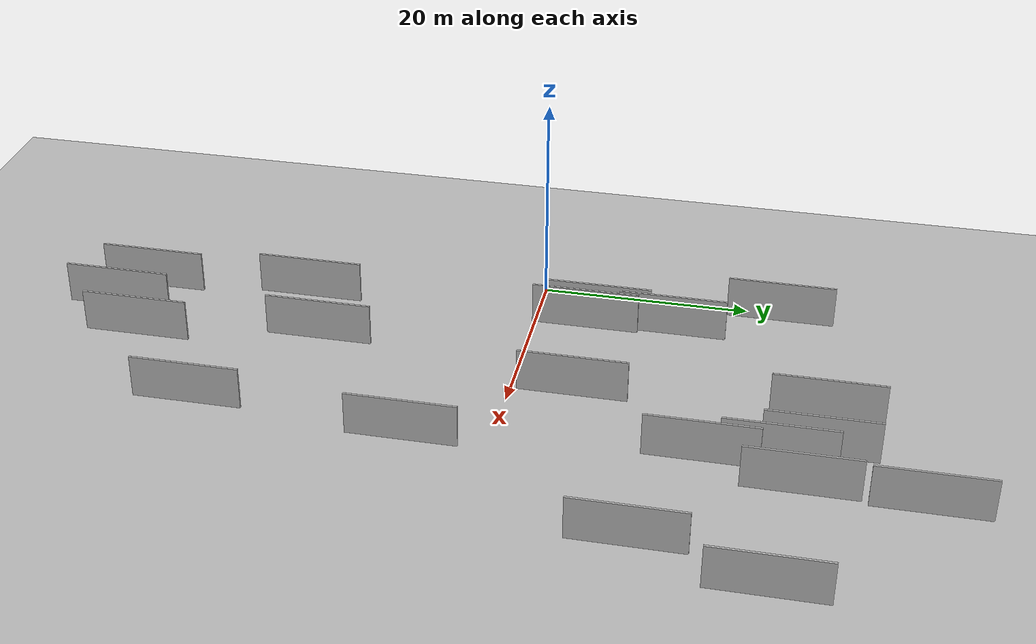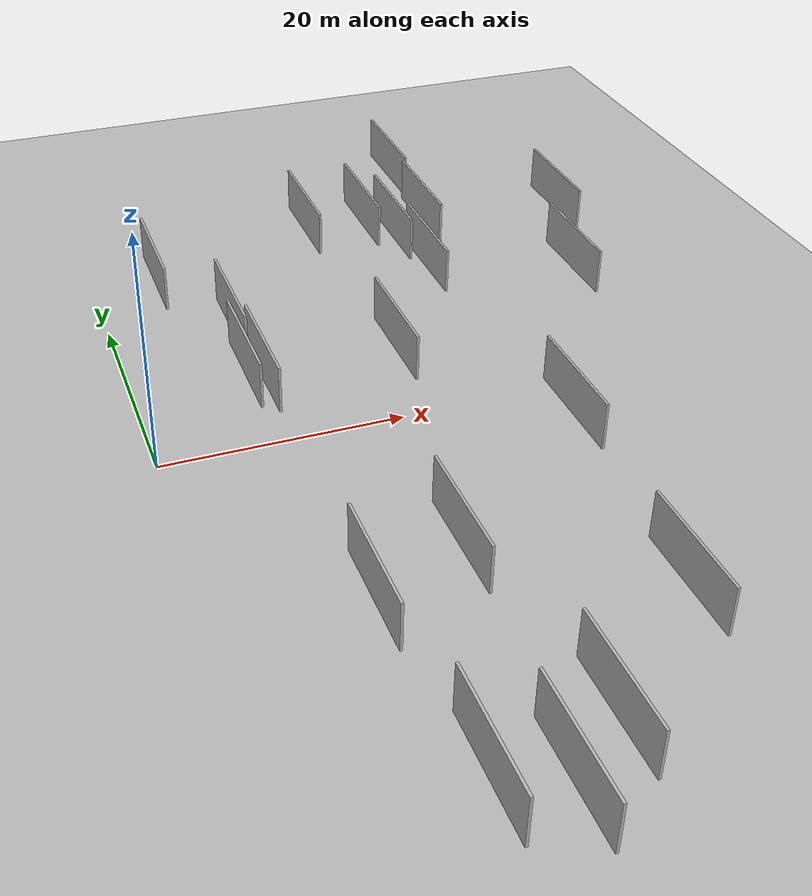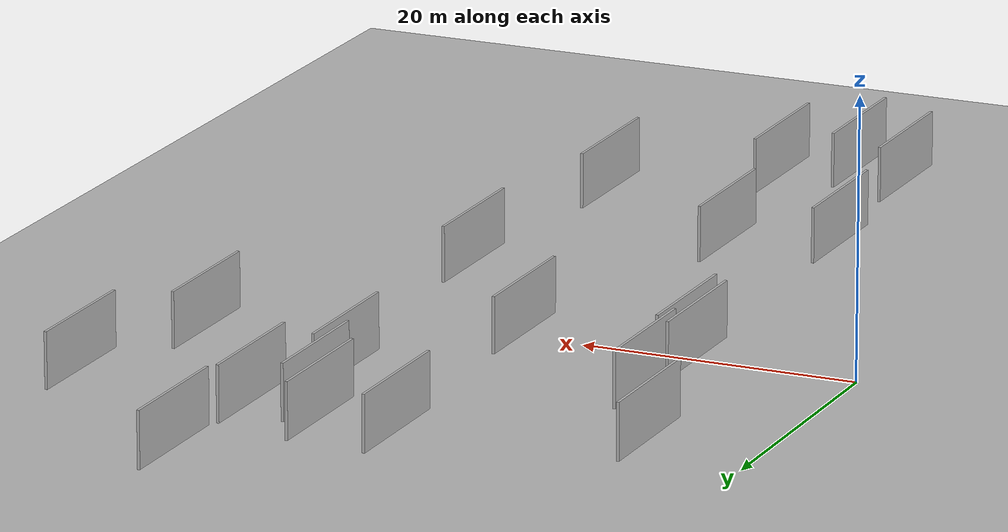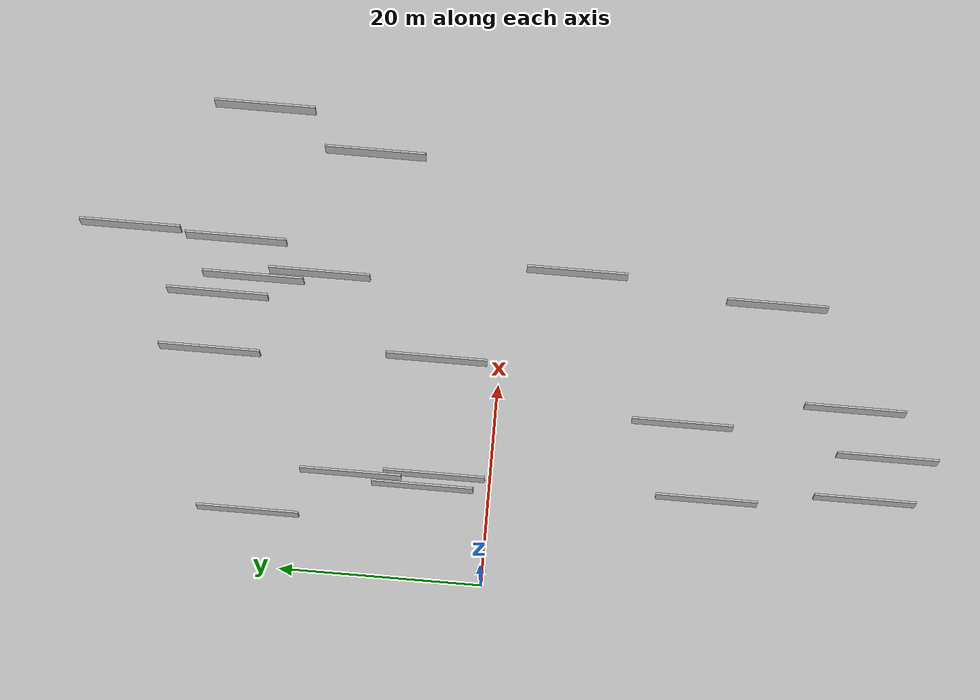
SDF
<?xml version="1.0" encoding="utf-8"?>

<sdf version="1.6">

   <world name="default">

      <gui fullscreen="0">

         <camera name="user_camera">

            <pose>-15 0 4.57585 0 0 0</pose>

            <view_controller>orbit</view_controller>

         </camera>

      </gui>

      <scene>

         <sky>

           <clouds>

             <speed>12</speed>

           </clouds>

         </sky>

         <ambient>0.4 0.4 0.4 1</ambient>

         <background>0.7 0.7 0.7 1</background>

         <shadows>1</shadows>

      </scene>

      <gravity>0 0 -9.8066</gravity>

      <magnetic_field>6e-06 2.3e-05 -4.2e-05</magnetic_field>

      <physics default="0" name="default_physics" type="ode">

         <ode>

            <solver>

               <type>quick</type>

               <iters>10</iters>

               <sor>1.0</sor>

               <use_dynamic_moi_rescaling>0</use_dynamic_moi_rescaling>

            </solver>

            <constraints>

               <cfm>0</cfm>

               <erp>0.2</erp>

               <contact_max_correcting_vel>100</contact_max_correcting_vel>

               <contact_surface_layer>0.001</contact_surface_layer>

            </constraints>

         </ode>

         <max_step_size>0.004</max_step_size>

         <real_time_factor>1</real_time_factor>

         <real_time_update_rate>250</real_time_update_rate>

      </physics>

      <light name="sun" type="directional">

         <cast_shadows>1</cast_shadows>

         <pose>0 0 10 0 0 0</pose>

         <diffuse>0.8 0.8 0.8 1</diffuse>

         <specular>0.2 0.2 0.2 1</specular>

         <attenuation>

            <range>1000</range>

            <constant>0.9</constant>

            <linear>0.01</linear>

            <quadratic>0.001</quadratic>

         </attenuation>

         <direction>-0.5 0.1 -0.9</direction>

      </light>

      <include>

         <name>ground_plane_1</name>

         <uri>model://HANNAS_ground_plane</uri>

         <pose>0 0 0  0 0 0</pose>

      </include>

      <include>

         <name>ground_plane_2</name>

         <uri>model://HANNAS_ground_plane</uri>

         <pose>100 0 0  0 0 0</pose>

      </include>

      <model name="HANNAS_wall_1">

         <static>1</static>

         <pose frame="">9.8910 -21.3462 2.5 0.000000 0.000000 1.570796</pose>

         <link name="link">

            <pose frame="">0 0 2.00 0 0 0</pose>

            <collision name="collision">

               <geometry>

                  <box>

                     <size>10.00 0.2 4.00</size>

                  </box>

               </geometry>

               <max_contacts>10</max_contacts>

               <surface>

                  <contact>

                     <ode/>

                  </contact>

                  <bounce/>

                  <friction>

                     <torsional>

                        <ode/>

                     </torsional>

                     <ode/>

                  </friction>

               </surface>

            </collision>

            <visual name="visual">

               <cast_shadows>0</cast_shadows>

               <geometry>

                  <box>

                     <size>10.00 0.2 4.00</size>

                  </box>

               </geometry>

               <material>

                  <script>

                     <uri>model://HANNAS_wall/materials/scripts</uri>

                     <uri>model://HANNAS_wall/materials/textures</uri>

                     <name>vrc/HANNAS_wall</name>

                  </script>

               </material>

            </visual>

            <self_collide>0</self_collide>

            <enable_wind>0</enable_wind>

            <kinematic>0</kinematic>

         </link>

      </model>

      <model name="HANNAS_wall_2">

         <static>1</static>

         <pose frame="">10.0449 5.4870 2.5 0.000000 0.000000 1.570796</pose>

         <link name="link">

            <pose frame="">0 0 2.00 0 0 0</pose>

            <collision name="collision">

               <geometry>

                  <box>

                     <size>10.00 0.2 4.00</size>

                  </box>

               </geometry>

               <max_contacts>10</max_contacts>

               <surface>

                  <contact>

                     <ode/>

                  </contact>

                  <bounce/>

                  <friction>

                     <torsional>

                        <ode/>

                     </torsional>

                     <ode/>

                  </friction>

               </surface>

            </collision>

            <visual name="visual">

               <cast_shadows>0</cast_shadows>

               <geometry>

                  <box>

                     <size>10.00 0.2 4.00</size>

                  </box>

               </geometry>

               <material>

                  <script>

                     <uri>model://HANNAS_wall/materials/scripts</uri>

                     <uri>model://HANNAS_wall/materials/textures</uri>

                     <name>vrc/HANNAS_wall</name>

                  </script>

               </material>

            </visual>

            <self_collide>0</self_collide>

            <enable_wind>0</enable_wind>

            <kinematic>0</kinematic>

         </link>

      </model>

      <model name="HANNAS_wall_3">

         <static>1</static>

         <pose frame="">9.5727 13.6501 2.5 0.000000 0.000000 1.570796</pose>

         <link name="link">

            <pose frame="">0 0 2.00 0 0 0</pose>

            <collision name="collision">

               <geometry>

                  <box>

                     <size>10.00 0.2 4.00</size>

                  </box>

               </geometry>

               <max_contacts>10</max_contacts>

               <surface>

                  <contact>

                     <ode/>

                  </contact>

                  <bounce/>

                  <friction>

                     <torsional>

                        <ode/>

                     </torsional>

                     <ode/>

                  </friction>

               </surface>

            </collision>

            <visual name="visual">

               <cast_shadows>0</cast_shadows>

               <geometry>

                  <box>

                     <size>10.00 0.2 4.00</size>

                  </box>

               </geometry>

               <material>

                  <script>

                     <uri>model://HANNAS_wall/materials/scripts</uri>

                     <uri>model://HANNAS_wall/materials/textures</uri>

                     <name>vrc/HANNAS_wall</name>

                  </script>

               </material>

            </visual>

            <self_collide>0</self_collide>

            <enable_wind>0</enable_wind>

            <kinematic>0</kinematic>

         </link>

      </model>

      <model name="HANNAS_wall_4">

         <static>1</static>

         <pose frame="">41.5551 13.9879 2.5 0.000000 0.000000 1.570796</pose>

         <link name="link">

            <pose frame="">0 0 2.00 0 0 0</pose>

            <collision name="collision">

               <geometry>

                  <box>

                     <size>10.00 0.2 4.00</size>

                  </box>

               </geometry>

               <max_contacts>10</max_contacts>

               <surface>

                  <contact>

                     <ode/>

                  </contact>

                  <bounce/>

                  <friction>

                     <torsional>

                        <ode/>

                     </torsional>

                     <ode/>

                  </friction>

               </surface>

            </collision>

            <visual name="visual">

               <cast_shadows>0</cast_shadows>

               <geometry>

                  <box>

                     <size>10.00 0.2 4.00</size>

                  </box>

               </geometry>

               <material>

                  <script>

                     <uri>model://HANNAS_wall/materials/scripts</uri>

                     <uri>model://HANNAS_wall/materials/textures</uri>

                     <name>vrc/HANNAS_wall</name>

                  </script>

               </material>

            </visual>

            <self_collide>0</self_collide>

            <enable_wind>0</enable_wind>

            <kinematic>0</kinematic>

         </link>

      </model>

      <model name="HANNAS_wall_5">

         <static>1</static>

         <pose frame="">31.2918 -6.8755 2.5 0.000000 0.000000 1.570796</pose>

         <link name="link">

            <pose frame="">0 0 2.00 0 0 0</pose>

            <collision name="collision">

               <geometry>

                  <box>

                     <size>10.00 0.2 4.00</size>

                  </box>

               </geometry>

               <max_contacts>10</max_contacts>

               <surface>

                  <contact>

                     <ode/>

                  </contact>

                  <bounce/>

                  <friction>

                     <torsional>

                        <ode/>

                     </torsional>

                     <ode/>

                  </friction>

               </surface>

            </collision>

            <visual name="visual">

               <cast_shadows>0</cast_shadows>

               <geometry>

                  <box>

                     <size>10.00 0.2 4.00</size>

                  </box>

               </geometry>

               <material>

                  <script>

                     <uri>model://HANNAS_wall/materials/scripts</uri>

                     <uri>model://HANNAS_wall/materials/textures</uri>

                     <name>vrc/HANNAS_wall</name>

                  </script>

               </material>

            </visual>

            <self_collide>0</self_collide>

            <enable_wind>0</enable_wind>

            <kinematic>0</kinematic>

         </link>

      </model>

      <model name="HANNAS_wall_6">

         <static>1</static>

         <pose frame="">28.1778 24.9407 2.5 0.000000 0.000000 1.570796</pose>

         <link name="link">

            <pose frame="">0 0 2.00 0 0 0</pose>

            <collision name="collision">

               <geometry>

                  <box>

                     <size>10.00 0.2 4.00</size>

                  </box>

               </geometry>

               <max_contacts>10</max_contacts>

               <surface>

                  <contact>

                     <ode/>

                  </contact>

                  <bounce/>

                  <friction>

                     <torsional>

                        <ode/>

                     </torsional>

                     <ode/>

                  </friction>

               </surface>

            </collision>

            <visual name="visual">

               <cast_shadows>0</cast_shadows>

               <geometry>

                  <box>

                     <size>10.00 0.2 4.00</size>

                  </box>

               </geometry>

               <material>

                  <script>

                     <uri>model://HANNAS_wall/materials/scripts</uri>

                     <uri>model://HANNAS_wall/materials/textures</uri>

                     <name>vrc/HANNAS_wall</name>

                  </script>

               </material>

            </visual>

            <self_collide>0</self_collide>

            <enable_wind>0</enable_wind>

            <kinematic>0</kinematic>

         </link>

      </model>

      <model name="HANNAS_wall_7">

         <static>1</static>

         <pose frame="">32.3200 37.4762 2.5 0.000000 0.000000 1.570796</pose>

         <link name="link">

            <pose frame="">0 0 2.00 0 0 0</pose>

            <collision name="collision">

               <geometry>

                  <box>

                     <size>10.00 0.2 4.00</size>

                  </box>

               </geometry>

               <max_contacts>10</max_contacts>

               <surface>

                  <contact>

                     <ode/>

                  </contact>

                  <bounce/>

                  <friction>

                     <torsional>

                        <ode/>

                     </torsional>

                     <ode/>

                  </friction>

               </surface>

            </collision>

            <visual name="visual">

               <cast_shadows>0</cast_shadows>

               <geometry>

                  <box>

                     <size>10.00 0.2 4.00</size>

                  </box>

               </geometry>

               <material>

                  <script>

                     <uri>model://HANNAS_wall/materials/scripts</uri>

                     <uri>model://HANNAS_wall/materials/textures</uri>

                     <name>vrc/HANNAS_wall</name>

                  </script>

               </material>

            </visual>

            <self_collide>0</self_collide>

            <enable_wind>0</enable_wind>

            <kinematic>0</kinematic>

         </link>

      </model>

      <model name="HANNAS_wall_8">

         <static>1</static>

         <pose frame="">15.4733 -38.7401 2.5 0.000000 0.000000 1.570796</pose>

         <link name="link">

            <pose frame="">0 0 2.00 0 0 0</pose>

            <collision name="collision">

               <geometry>

                  <box>

                     <size>10.00 0.2 4.00</size>

                  </box>

               </geometry>

               <max_contacts>10</max_contacts>

               <surface>

                  <contact>

                     <ode/>

                  </contact>

                  <bounce/>

                  <friction>

                     <torsional>

                        <ode/>

                     </torsional>

                     <ode/>

                  </friction>

               </surface>

            </collision>

            <visual name="visual">

               <cast_shadows>0</cast_shadows>

               <geometry>

                  <box>

                     <size>10.00 0.2 4.00</size>

                  </box>

               </geometry>

               <material>

                  <script>

                     <uri>model://HANNAS_wall/materials/scripts</uri>

                     <uri>model://HANNAS_wall/materials/textures</uri>

                     <name>vrc/HANNAS_wall</name>

                  </script>

               </material>

            </visual>

            <self_collide>0</self_collide>

            <enable_wind>0</enable_wind>

            <kinematic>0</kinematic>

         </link>

      </model>

      <model name="HANNAS_wall_9">

         <static>1</static>

         <pose frame="">20.6354 28.5776 2.5 0.000000 0.000000 1.570796</pose>

         <link name="link">

            <pose frame="">0 0 2.00 0 0 0</pose>

            <collision name="collision">

               <geometry>

                  <box>

                     <size>10.00 0.2 4.00</size>

                  </box>

               </geometry>

               <max_contacts>10</max_contacts>

               <surface>

                  <contact>

                     <ode/>

                  </contact>

                  <bounce/>

                  <friction>

                     <torsional>

                        <ode/>

                     </torsional>

                     <ode/>

                  </friction>

               </surface>

            </collision>

            <visual name="visual">

               <cast_shadows>0</cast_shadows>

               <geometry>

                  <box>

                     <size>10.00 0.2 4.00</size>

                  </box>

               </geometry>

               <material>

                  <script>

                     <uri>model://HANNAS_wall/materials/scripts</uri>

                     <uri>model://HANNAS_wall/materials/textures</uri>

                     <name>vrc/HANNAS_wall</name>

                  </script>

               </material>

            </visual>

            <self_collide>0</self_collide>

            <enable_wind>0</enable_wind>

            <kinematic>0</kinematic>

         </link>

      </model>

      <model name="HANNAS_wall_10">

         <static>1</static>

         <pose frame="">45.2615 25.2938 2.5 0.000000 0.000000 1.570796</pose>

         <link name="link">

            <pose frame="">0 0 2.00 0 0 0</pose>

            <collision name="collision">

               <geometry>

                  <box>

                     <size>10.00 0.2 4.00</size>

                  </box>

               </geometry>

               <max_contacts>10</max_contacts>

               <surface>

                  <contact>

                     <ode/>

                  </contact>

                  <bounce/>

                  <friction>

                     <torsional>

                        <ode/>

                     </torsional>

                     <ode/>

                  </friction>

               </surface>

            </collision>

            <visual name="visual">

               <cast_shadows>0</cast_shadows>

               <geometry>

                  <box>

                     <size>10.00 0.2 4.00</size>

                  </box>

               </geometry>

               <material>

                  <script>

                     <uri>model://HANNAS_wall/materials/scripts</uri>

                     <uri>model://HANNAS_wall/materials/textures</uri>

                     <name>vrc/HANNAS_wall</name>

                  </script>

               </material>

            </visual>

            <self_collide>0</self_collide>

            <enable_wind>0</enable_wind>

            <kinematic>0</kinematic>

         </link>

      </model>

      <model name="HANNAS_wall_11">

         <static>1</static>

         <pose frame="">11.1461 -36.8215 2.5 0.000000 0.000000 1.570796</pose>

         <link name="link">

            <pose frame="">0 0 2.00 0 0 0</pose>

            <collision name="collision">

               <geometry>

                  <box>

                     <size>10.00 0.2 4.00</size>

                  </box>

               </geometry>

               <max_contacts>10</max_contacts>

               <surface>

                  <contact>

                     <ode/>

                  </contact>

                  <bounce/>

                  <friction>

                     <torsional>

                        <ode/>

                     </torsional>

                     <ode/>

                  </friction>

               </surface>

            </collision>

            <visual name="visual">

               <cast_shadows>0</cast_shadows>

               <geometry>

                  <box>

                     <size>10.00 0.2 4.00</size>

                  </box>

               </geometry>

               <material>

                  <script>

                     <uri>model://HANNAS_wall/materials/scripts</uri>

                     <uri>model://HANNAS_wall/materials/textures</uri>

                     <name>vrc/HANNAS_wall</name>

                  </script>

               </material>

            </visual>

            <self_collide>0</self_collide>

            <enable_wind>0</enable_wind>

            <kinematic>0</kinematic>

         </link>

      </model>

      <model name="HANNAS_wall_12">

         <static>1</static>

         <pose frame="">29.0543 18.4433 2.5 0.000000 0.000000 1.570796</pose>

         <link name="link">

            <pose frame="">0 0 2.00 0 0 0</pose>

            <collision name="collision">

               <geometry>

                  <box>

                     <size>10.00 0.2 4.00</size>

                  </box>

               </geometry>

               <max_contacts>10</max_contacts>

               <surface>

                  <contact>

                     <ode/>

                  </contact>

                  <bounce/>

                  <friction>

                     <torsional>

                        <ode/>

                     </torsional>

                     <ode/>

                  </friction>

               </surface>

            </collision>

            <visual name="visual">

               <cast_shadows>0</cast_shadows>

               <geometry>

                  <box>

                     <size>10.00 0.2 4.00</size>

                  </box>

               </geometry>

               <material>

                  <script>

                     <uri>model://HANNAS_wall/materials/scripts</uri>

                     <uri>model://HANNAS_wall/materials/textures</uri>

                     <name>vrc/HANNAS_wall</name>

                  </script>

               </material>

            </visual>

            <self_collide>0</self_collide>

            <enable_wind>0</enable_wind>

            <kinematic>0</kinematic>

         </link>

      </model>

      <model name="HANNAS_wall_13">

         <static>1</static>

         <pose frame="">5.0737 23.3779 2.5 0.000000 0.000000 1.570796</pose>

         <link name="link">

            <pose frame="">0 0 2.00 0 0 0</pose>

            <collision name="collision">

               <geometry>

                  <box>

                     <size>10.00 0.2 4.00</size>

                  </box>

               </geometry>

               <max_contacts>10</max_contacts>

               <surface>

                  <contact>

                     <ode/>

                  </contact>

                  <bounce/>

                  <friction>

                     <torsional>

                        <ode/>

                     </torsional>

                     <ode/>

                  </friction>

               </surface>

            </collision>

            <visual name="visual">

               <cast_shadows>0</cast_shadows>

               <geometry>

                  <box>

                     <size>10.00 0.2 4.00</size>

                  </box>

               </geometry>

               <material>

                  <script>

                     <uri>model://HANNAS_wall/materials/scripts</uri>

                     <uri>model://HANNAS_wall/materials/textures</uri>

                     <name>vrc/HANNAS_wall</name>

                  </script>

               </material>

            </visual>

            <self_collide>0</self_collide>

            <enable_wind>0</enable_wind>

            <kinematic>0</kinematic>

         </link>

      </model>

      <model name="HANNAS_wall_14">

         <static>1</static>

         <pose frame="">19.9971 -35.2172 2.5 0.000000 0.000000 1.570796</pose>

         <link name="link">

            <pose frame="">0 0 2.00 0 0 0</pose>

            <collision name="collision">

               <geometry>

                  <box>

                     <size>10.00 0.2 4.00</size>

                  </box>

               </geometry>

               <max_contacts>10</max_contacts>

               <surface>

                  <contact>

                     <ode/>

                  </contact>

                  <bounce/>

                  <friction>

                     <torsional>

                        <ode/>

                     </torsional>

                     <ode/>

                  </friction>

               </surface>

            </collision>

            <visual name="visual">

               <cast_shadows>0</cast_shadows>

               <geometry>

                  <box>

                     <size>10.00 0.2 4.00</size>

                  </box>

               </geometry>

               <material>

                  <script>

                     <uri>model://HANNAS_wall/materials/scripts</uri>

                     <uri>model://HANNAS_wall/materials/textures</uri>

                     <name>vrc/HANNAS_wall</name>

                  </script>

               </material>

            </visual>

            <self_collide>0</self_collide>

            <enable_wind>0</enable_wind>

            <kinematic>0</kinematic>

         </link>

      </model>

      <model name="HANNAS_wall_15">

         <static>1</static>

         <pose frame="">29.6917 -26.7847 2.5 0.000000 0.000000 1.570796</pose>

         <link name="link">

            <pose frame="">0 0 2.00 0 0 0</pose>

            <collision name="collision">

               <geometry>

                  <box>

                     <size>10.00 0.2 4.00</size>

                  </box>

               </geometry>

               <max_contacts>10</max_contacts>

               <surface>

                  <contact>

                     <ode/>

                  </contact>

                  <bounce/>

                  <friction>

                     <torsional>

                        <ode/>

                     </torsional>

                     <ode/>

                  </friction>

               </surface>

            </collision>

            <visual name="visual">

               <cast_shadows>0</cast_shadows>

               <geometry>

                  <box>

                     <size>10.00 0.2 4.00</size>

                  </box>

               </geometry>

               <material>

                  <script>

                     <uri>model://HANNAS_wall/materials/scripts</uri>

                     <uri>model://HANNAS_wall/materials/textures</uri>

                     <name>vrc/HANNAS_wall</name>

                  </script>

               </material>

            </visual>

            <self_collide>0</self_collide>

            <enable_wind>0</enable_wind>

            <kinematic>0</kinematic>

         </link>

      </model>

      <model name="HANNAS_wall_16">

         <static>1</static>

         <pose frame="">17.1610 -18.4045 2.5 0.000000 0.000000 1.570796</pose>

         <link name="link">

            <pose frame="">0 0 2.00 0 0 0</pose>

            <collision name="collision">

               <geometry>

                  <box>

                     <size>10.00 0.2 4.00</size>

                  </box>

               </geometry>

               <max_contacts>10</max_contacts>

               <surface>

                  <contact>

                     <ode/>

                  </contact>

                  <bounce/>

                  <friction>

                     <torsional>

                        <ode/>

                     </torsional>

                     <ode/>

                  </friction>

               </surface>

            </collision>

            <visual name="visual">

               <cast_shadows>0</cast_shadows>

               <geometry>

                  <box>

                     <size>10.00 0.2 4.00</size>

                  </box>

               </geometry>

               <material>

                  <script>

                     <uri>model://HANNAS_wall/materials/scripts</uri>

                     <uri>model://HANNAS_wall/materials/textures</uri>

                     <name>vrc/HANNAS_wall</name>

                  </script>

               </material>

            </visual>

            <self_collide>0</self_collide>

            <enable_wind>0</enable_wind>

            <kinematic>0</kinematic>

         </link>

      </model>

      <model name="HANNAS_wall_17">

         <static>1</static>

         <pose frame="">26.2667 28.2981 2.5 0.000000 0.000000 1.570796</pose>

         <link name="link">

            <pose frame="">0 0 2.00 0 0 0</pose>

            <collision name="collision">

               <geometry>

                  <box>

                     <size>10.00 0.2 4.00</size>

                  </box>

               </geometry>

               <max_contacts>10</max_contacts>

               <surface>

                  <contact>

                     <ode/>

                  </contact>

                  <bounce/>

                  <friction>

                     <torsional>

                        <ode/>

                     </torsional>

                     <ode/>

                  </friction>

               </surface>

            </collision>

            <visual name="visual">

               <cast_shadows>0</cast_shadows>

               <geometry>

                  <box>

                     <size>10.00 0.2 4.00</size>

                  </box>

               </geometry>

               <material>

                  <script>

                     <uri>model://HANNAS_wall/materials/scripts</uri>

                     <uri>model://HANNAS_wall/materials/textures</uri>

                     <name>vrc/HANNAS_wall</name>

                  </script>

               </material>

            </visual>

            <self_collide>0</self_collide>

            <enable_wind>0</enable_wind>

            <kinematic>0</kinematic>

         </link>

      </model>

      <model name="HANNAS_wall_18">

         <static>1</static>

         <pose frame="">21.5850 6.2415 2.5 0.000000 0.000000 1.570796</pose>

         <link name="link">

            <pose frame="">0 0 2.00 0 0 0</pose>

            <collision name="collision">

               <geometry>

                  <box>

                     <size>10.00 0.2 4.00</size>

                  </box>

               </geometry>

               <max_contacts>10</max_contacts>

               <surface>

                  <contact>

                     <ode/>

                  </contact>

                  <bounce/>

                  <friction>

                     <torsional>

                        <ode/>

                     </torsional>

                     <ode/>

                  </friction>

               </surface>

            </collision>

            <visual name="visual">

               <cast_shadows>0</cast_shadows>

               <geometry>

                  <box>

                     <size>10.00 0.2 4.00</size>

                  </box>

               </geometry>

               <material>

                  <script>

                     <uri>model://HANNAS_wall/materials/scripts</uri>

                     <uri>model://HANNAS_wall/materials/textures</uri>

                     <name>vrc/HANNAS_wall</name>

                  </script>

               </material>

            </visual>

            <self_collide>0</self_collide>

            <enable_wind>0</enable_wind>

            <kinematic>0</kinematic>

         </link>

      </model>

      <model name="HANNAS_wall_19">

         <static>1</static>

         <pose frame="">8.8685 6.5234 2.5 0.000000 0.000000 1.570796</pose>

         <link name="link">

            <pose frame="">0 0 2.00 0 0 0</pose>

            <collision name="collision">

               <geometry>

                  <box>

                     <size>10.00 0.2 4.00</size>

                  </box>

               </geometry>

               <max_contacts>10</max_contacts>

               <surface>

                  <contact>

                     <ode/>

                  </contact>

                  <bounce/>

                  <friction>

                     <torsional>

                        <ode/>

                     </torsional>

                     <ode/>

                  </friction>

               </surface>

            </collision>

            <visual name="visual">

               <cast_shadows>0</cast_shadows>

               <geometry>

                  <box>

                     <size>10.00 0.2 4.00</size>

                  </box>

               </geometry>

               <material>

                  <script>

                     <uri>model://HANNAS_wall/materials/scripts</uri>

                     <uri>model://HANNAS_wall/materials/textures</uri>

                     <name>vrc/HANNAS_wall</name>

                  </script>

               </material>

            </visual>

            <self_collide>0</self_collide>

            <enable_wind>0</enable_wind>

            <kinematic>0</kinematic>

         </link>

      </model>

      <model name="HANNAS_wall_20">

         <static>1</static>

         <pose frame="">31.8618 26.9551 2.5 0.000000 0.000000 1.570796</pose>

         <link name="link">

            <pose frame="">0 0 2.00 0 0 0</pose>

            <collision name="collision">

               <geometry>

                  <box>

                     <size>10.00 0.2 4.00</size>

                  </box>

               </geometry>

               <max_contacts>10</max_contacts>

               <surface>

                  <contact>

                     <ode/>

                  </contact>

                  <bounce/>

                  <friction>

                     <torsional>

                        <ode/>

                     </torsional>

                     <ode/>

                  </friction>

               </surface>

            </collision>

            <visual name="visual">

               <cast_shadows>0</cast_shadows>

               <geometry>

                  <box>

                     <size>10.00 0.2 4.00</size>

                  </box>

               </geometry>

               <material>

                  <script>

                     <uri>model://HANNAS_wall/materials/scripts</uri>

                     <uri>model://HANNAS_wall/materials/textures</uri>

                     <name>vrc/HANNAS_wall</name>

                  </script>

               </material>

            </visual>

            <self_collide>0</self_collide>

            <enable_wind>0</enable_wind>

            <kinematic>0</kinematic>

         </link>

      </model>

   </world>

</sdf>

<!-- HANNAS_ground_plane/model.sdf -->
<sdf version="1.4">
<model name="HANNAS_ground_plane">
  <static>true</static>
    <link name="link">
      <collision name="collision">
        <geometry>
          <plane>
            <normal>0 0 1</normal>
            <size>1000 1000</size>
          </plane>
        </geometry>
        <surface>
          <friction>
            <ode>
              <mu>100</mu>
              <mu2>50</mu2>
            </ode>
          </friction>
        </surface>
      </collision>
      <visual name="visual">
        <cast_shadows>false</cast_shadows>
        <geometry>
          <plane>
            <normal>0 0 1</normal>
            <size>1000 1000</size>
          </plane>
        </geometry>
        <material>
          <script>
            <uri>model://HANNAS_ground_plane/materials/scripts/HANNAS_ground_plane.material</uri>
	    <uri>model://HANNAS_ground_plane/materials/textures</uri>
            <name>HANNASGroundPlane/Image</name>
          </script>
        </material>
      </visual>
    </link>
  </model>
</sdf>
